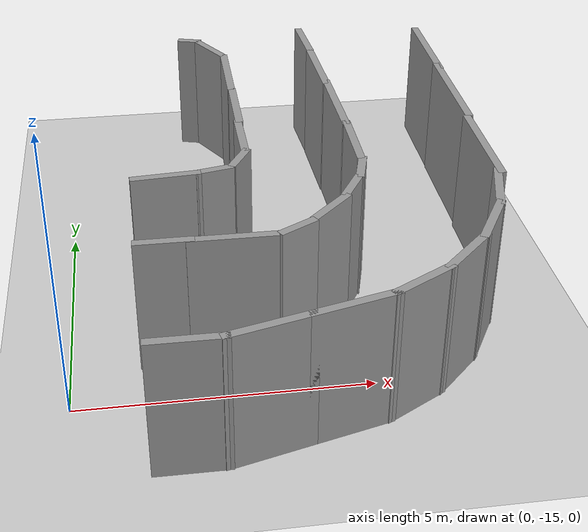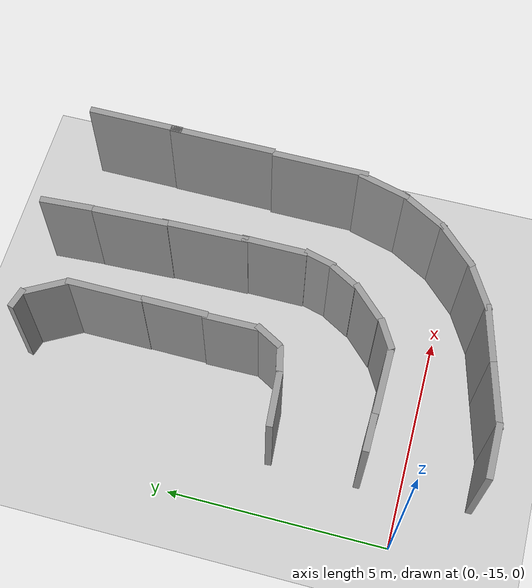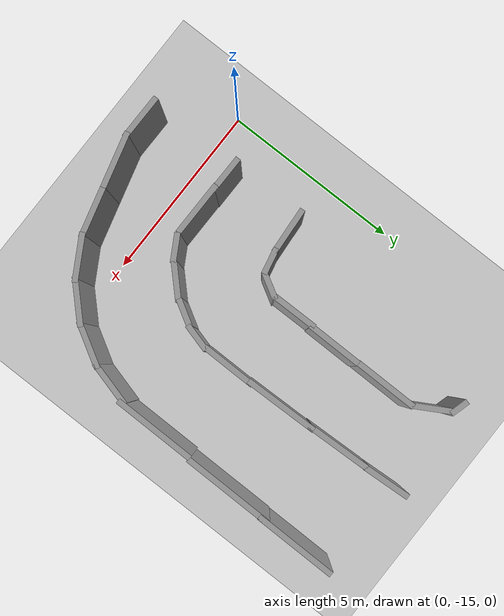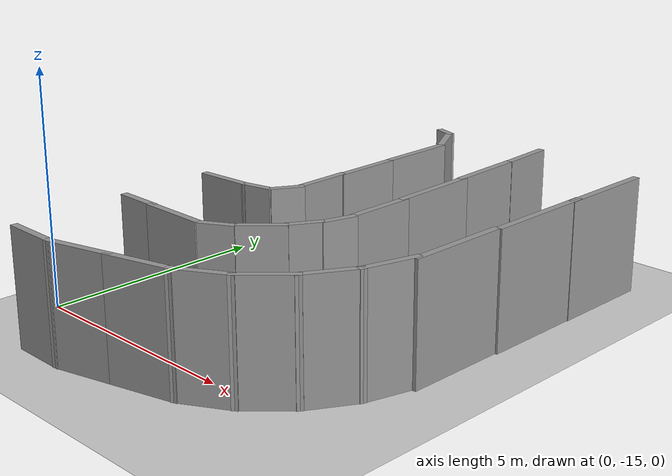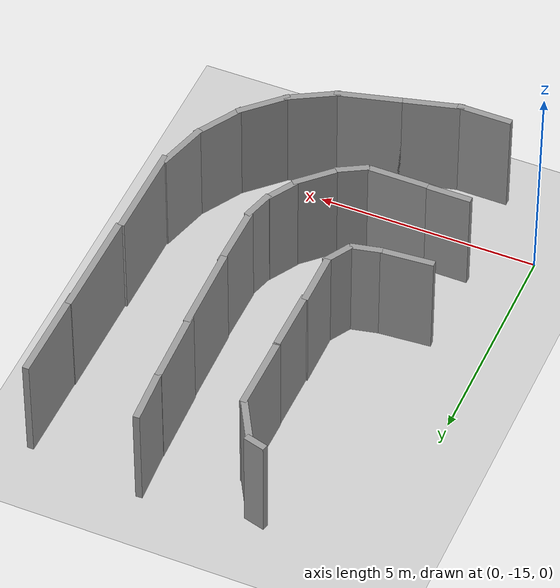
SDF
<sdf version="1.6">
 <world name="default">
  <model name="ground_plane">
   <static>1</static>
   <link name="link">
    <collision name="collision">
     <geometry><plane><normal>0 0 1</normal><size>100 100</size></plane></geometry>
     <surface><friction><ode><mu>100</mu><mu2>50</mu2></ode></friction></surface>
    </collision>
    <visual name="visual">
     <cast_shadows>0</cast_shadows>
     <geometry><plane><normal>0 0 1</normal><size>100 100</size></plane></geometry>
     <material>
      <script><uri>file://media/materials/scripts/gazebo.material</uri><name>Gazebo/Grey</name></script>
     </material>
    </visual>
   </link>
  </model>
  <model name="c-Snail_v3_clone">
   <link name="Wall_19">
    <pose>0.800174 -5.81597 0 0 -0 0</pose>
    <visual name="Wall_19_Visual">
     <pose>0 0 1.25 0 -0 0</pose>
     <geometry><box><size>2.25 0.15 2.5</size></box></geometry>
     <material>
      <script><uri>file://media/materials/scripts/gazebo.material</uri><name>Gazebo/Grey</name></script>
      <ambient>1 1 1 1</ambient>
     </material>
     <meta><layer>0</layer></meta>
    </visual>
    <collision name="Wall_19_Collision">
     <pose>0 0 1.25 0 -0 0</pose>
     <geometry><box><size>2.25 0.15 2.5</size></box></geometry>
     <surface>
      <friction>
       <ode><mu>1</mu><mu2>1</mu2><fdir1>0 0 0</fdir1><slip1>0</slip1><slip2>0</slip2></ode>
       <torsional>
        <coefficient>1</coefficient>
        <patch_radius>0</patch_radius>
        <surface_radius>0</surface_radius>
        <use_patch_radius>1</use_patch_radius>
        <ode><slip>0</slip></ode>
       </torsional>
      </friction>
      <bounce><restitution_coefficient>0</restitution_coefficient><threshold>1e+06</threshold></bounce>
      <contact>
       <collide_without_contact>0</collide_without_contact>
       <collide_without_contact_bitmask>1</collide_without_contact_bitmask>
       <collide_bitmask>1</collide_bitmask>
       <ode>
        <soft_cfm>0</soft_cfm>
        <soft_erp>0.2</soft_erp>
        <kp>1e+13</kp>
        <kd>1</kd>
        <max_vel>0.01</max_vel>
        <min_depth>0</min_depth>
       </ode>
       <bullet>
        <split_impulse>1</split_impulse>
        <split_impulse_penetration_threshold>-0.01</split_impulse_penetration_threshold>
        <soft_cfm>0</soft_cfm>
        <soft_erp>0.2</soft_erp>
        <kp>1e+13</kp>
        <kd>1</kd>
       </bullet>
      </contact>
     </surface>
    </collision>
   </link>
   <link name="Wall_20">
    <pose>2.90214 -5.80096 0 0 -0 0</pose>
    <visual name="Wall_20_Visual">
     <pose>0 0 1.25 0 -0 0</pose>
     <geometry><box><size>2.5 0.15 2.5</size></box></geometry>
     <material>
      <script><uri>file://media/materials/scripts/gazebo.material</uri><name>Gazebo/Grey</name></script>
      <ambient>1 1 1 1</ambient>
     </material>
     <meta><layer>0</layer></meta>
    </visual>
    <collision name="Wall_20_Collision">
     <pose>0 0 1.25 0 -0 0</pose>
     <geometry><box><size>2.5 0.15 2.5</size></box></geometry>
     <surface>
      <friction>
       <ode><mu>1</mu><mu2>1</mu2><fdir1>0 0 0</fdir1><slip1>0</slip1><slip2>0</slip2></ode>
       <torsional>
        <coefficient>1</coefficient>
        <patch_radius>0</patch_radius>
        <surface_radius>0</surface_radius>
        <use_patch_radius>1</use_patch_radius>
        <ode><slip>0</slip></ode>
       </torsional>
      </friction>
      <bounce><restitution_coefficient>0</restitution_coefficient><threshold>1e+06</threshold></bounce>
      <contact>
       <collide_without_contact>0</collide_without_contact>
       <collide_without_contact_bitmask>1</collide_without_contact_bitmask>
       <collide_bitmask>1</collide_bitmask>
       <ode>
        <soft_cfm>0</soft_cfm>
        <soft_erp>0.2</soft_erp>
        <kp>1e+13</kp>
        <kd>1</kd>
        <max_vel>0.01</max_vel>
        <min_depth>0</min_depth>
       </ode>
       <bullet>
        <split_impulse>1</split_impulse>
        <split_impulse_penetration_threshold>-0.01</split_impulse_penetration_threshold>
        <soft_cfm>0</soft_cfm>
        <soft_erp>0.2</soft_erp>
        <kp>1e+13</kp>
        <kd>1</kd>
       </bullet>
      </contact>
     </surface>
    </collision>
   </link>
   <link name="Wall_21">
    <pose>5.25228 -5.75509 0 0 -0 0</pose>
    <visual name="Wall_21_Visual">
     <pose>0 0 1.25 0 -0 0</pose>
     <geometry><box><size>2.25 0.15 2.5</size></box></geometry>
     <material>
      <script><uri>file://media/materials/scripts/gazebo.material</uri><name>Gazebo/Grey</name></script>
      <ambient>1 1 1 1</ambient>
     </material>
     <meta><layer>0</layer></meta>
    </visual>
    <collision name="Wall_21_Collision">
     <pose>0 0 1.25 0 -0 0</pose>
     <geometry><box><size>2.25 0.15 2.5</size></box></geometry>
     <surface>
      <friction>
       <ode><mu>1</mu><mu2>1</mu2><fdir1>0 0 0</fdir1><slip1>0</slip1><slip2>0</slip2></ode>
       <torsional>
        <coefficient>1</coefficient>
        <patch_radius>0</patch_radius>
        <surface_radius>0</surface_radius>
        <use_patch_radius>1</use_patch_radius>
        <ode><slip>0</slip></ode>
       </torsional>
      </friction>
      <bounce><restitution_coefficient>0</restitution_coefficient><threshold>1e+06</threshold></bounce>
      <contact>
       <collide_without_contact>0</collide_without_contact>
       <collide_without_contact_bitmask>1</collide_without_contact_bitmask>
       <collide_bitmask>1</collide_bitmask>
       <ode>
        <soft_cfm>0</soft_cfm>
        <soft_erp>0.2</soft_erp>
        <kp>1e+13</kp>
        <kd>1</kd>
        <max_vel>0.01</max_vel>
        <min_depth>0</min_depth>
       </ode>
       <bullet>
        <split_impulse>1</split_impulse>
        <split_impulse_penetration_threshold>-0.01</split_impulse_penetration_threshold>
        <soft_cfm>0</soft_cfm>
        <soft_erp>0.2</soft_erp>
        <kp>1e+13</kp>
        <kd>1</kd>
       </bullet>
      </contact>
     </surface>
    </collision>
   </link>
   <link name="Wall_22">
    <pose>6.78859 -5.56286 0 0 -0 0.261799</pose>
    <visual name="Wall_22_Visual">
     <pose>0 0 1.25 0 -0 0</pose>
     <geometry><box><size>1.25 0.15 2.5</size></box></geometry>
     <material>
      <script><uri>file://media/materials/scripts/gazebo.material</uri><name>Gazebo/Grey</name></script>
      <ambient>1 1 1 1</ambient>
     </material>
     <meta><layer>0</layer></meta>
    </visual>
    <collision name="Wall_22_Collision">
     <pose>0 0 1.25 0 -0 0</pose>
     <geometry><box><size>1.25 0.15 2.5</size></box></geometry>
     <surface>
      <friction>
       <ode><mu>1</mu><mu2>1</mu2><fdir1>0 0 0</fdir1><slip1>0</slip1><slip2>0</slip2></ode>
       <torsional>
        <coefficient>1</coefficient>
        <patch_radius>0</patch_radius>
        <surface_radius>0</surface_radius>
        <use_patch_radius>1</use_patch_radius>
        <ode><slip>0</slip></ode>
       </torsional>
      </friction>
      <bounce><restitution_coefficient>0</restitution_coefficient><threshold>1e+06</threshold></bounce>
      <contact>
       <collide_without_contact>0</collide_without_contact>
       <collide_without_contact_bitmask>1</collide_without_contact_bitmask>
       <collide_bitmask>1</collide_bitmask>
       <ode>
        <soft_cfm>0</soft_cfm>
        <soft_erp>0.2</soft_erp>
        <kp>1e+13</kp>
        <kd>1</kd>
        <max_vel>0.01</max_vel>
        <min_depth>0</min_depth>
       </ode>
       <bullet>
        <split_impulse>1</split_impulse>
        <split_impulse_penetration_threshold>-0.01</split_impulse_penetration_threshold>
        <soft_cfm>0</soft_cfm>
        <soft_erp>0.2</soft_erp>
        <kp>1e+13</kp>
        <kd>1</kd>
       </bullet>
      </contact>
     </surface>
    </collision>
   </link>
   <link name="Wall_23">
    <pose>7.79617 -5.14551 0 0 -0 0.523599</pose>
    <visual name="Wall_23_Visual">
     <pose>0 0 1.25 0 -0 0</pose>
     <geometry><box><size>1.25 0.15 2.5</size></box></geometry>
     <material>
      <script><uri>file://media/materials/scripts/gazebo.material</uri><name>Gazebo/Grey</name></script>
      <ambient>1 1 1 1</ambient>
     </material>
     <meta><layer>0</layer></meta>
    </visual>
    <collision name="Wall_23_Collision">
     <pose>0 0 1.25 0 -0 0</pose>
     <geometry><box><size>1.25 0.15 2.5</size></box></geometry>
     <surface>
      <friction>
       <ode><mu>1</mu><mu2>1</mu2><fdir1>0 0 0</fdir1><slip1>0</slip1><slip2>0</slip2></ode>
       <torsional>
        <coefficient>1</coefficient>
        <patch_radius>0</patch_radius>
        <surface_radius>0</surface_radius>
        <use_patch_radius>1</use_patch_radius>
        <ode><slip>0</slip></ode>
       </torsional>
      </friction>
      <bounce><restitution_coefficient>0</restitution_coefficient><threshold>1e+06</threshold></bounce>
      <contact>
       <collide_without_contact>0</collide_without_contact>
       <collide_without_contact_bitmask>1</collide_without_contact_bitmask>
       <collide_bitmask>1</collide_bitmask>
       <ode>
        <soft_cfm>0</soft_cfm>
        <soft_erp>0.2</soft_erp>
        <kp>1e+13</kp>
        <kd>1</kd>
        <max_vel>0.01</max_vel>
        <min_depth>0</min_depth>
       </ode>
       <bullet>
        <split_impulse>1</split_impulse>
        <split_impulse_penetration_threshold>-0.01</split_impulse_penetration_threshold>
        <soft_cfm>0</soft_cfm>
        <soft_erp>0.2</soft_erp>
        <kp>1e+13</kp>
        <kd>1</kd>
       </bullet>
      </contact>
     </surface>
    </collision>
   </link>
   <link name="Wall_24">
    <pose>8.66139 -4.4816 0 0 -0 0.785398</pose>
    <visual name="Wall_24_Visual">
     <pose>0 0 1.25 0 -0 0</pose>
     <geometry><box><size>1.25 0.15 2.5</size></box></geometry>
     <material>
      <script><uri>file://media/materials/scripts/gazebo.material</uri><name>Gazebo/Grey</name></script>
      <ambient>1 1 1 1</ambient>
     </material>
     <meta><layer>0</layer></meta>
    </visual>
    <collision name="Wall_24_Collision">
     <pose>0 0 1.25 0 -0 0</pose>
     <geometry><box><size>1.25 0.15 2.5</size></box></geometry>
     <surface>
      <friction>
       <ode><mu>1</mu><mu2>1</mu2><fdir1>0 0 0</fdir1><slip1>0</slip1><slip2>0</slip2></ode>
       <torsional>
        <coefficient>1</coefficient>
        <patch_radius>0</patch_radius>
        <surface_radius>0</surface_radius>
        <use_patch_radius>1</use_patch_radius>
        <ode><slip>0</slip></ode>
       </torsional>
      </friction>
      <bounce><restitution_coefficient>0</restitution_coefficient><threshold>1e+06</threshold></bounce>
      <contact>
       <collide_without_contact>0</collide_without_contact>
       <collide_without_contact_bitmask>1</collide_without_contact_bitmask>
       <collide_bitmask>1</collide_bitmask>
       <ode>
        <soft_cfm>0</soft_cfm>
        <soft_erp>0.2</soft_erp>
        <kp>1e+13</kp>
        <kd>1</kd>
        <max_vel>0.01</max_vel>
        <min_depth>0</min_depth>
       </ode>
       <bullet>
        <split_impulse>1</split_impulse>
        <split_impulse_penetration_threshold>-0.01</split_impulse_penetration_threshold>
        <soft_cfm>0</soft_cfm>
        <soft_erp>0.2</soft_erp>
        <kp>1e+13</kp>
        <kd>1</kd>
       </bullet>
      </contact>
     </surface>
    </collision>
   </link>
   <link name="Wall_25">
    <pose>9.3253 -3.61638 0 0 -0 1.0472</pose>
    <visual name="Wall_25_Visual">
     <pose>0 0 1.25 0 -0 0</pose>
     <geometry><box><size>1.25 0.15 2.5</size></box></geometry>
     <material>
      <script><uri>file://media/materials/scripts/gazebo.material</uri><name>Gazebo/Grey</name></script>
      <ambient>1 1 1 1</ambient>
     </material>
     <meta><layer>0</layer></meta>
    </visual>
    <collision name="Wall_25_Collision">
     <pose>0 0 1.25 0 -0 0</pose>
     <geometry><box><size>1.25 0.15 2.5</size></box></geometry>
     <surface>
      <friction>
       <ode><mu>1</mu><mu2>1</mu2><fdir1>0 0 0</fdir1><slip1>0</slip1><slip2>0</slip2></ode>
       <torsional>
        <coefficient>1</coefficient>
        <patch_radius>0</patch_radius>
        <surface_radius>0</surface_radius>
        <use_patch_radius>1</use_patch_radius>
        <ode><slip>0</slip></ode>
       </torsional>
      </friction>
      <bounce><restitution_coefficient>0</restitution_coefficient><threshold>1e+06</threshold></bounce>
      <contact>
       <collide_without_contact>0</collide_without_contact>
       <collide_without_contact_bitmask>1</collide_without_contact_bitmask>
       <collide_bitmask>1</collide_bitmask>
       <ode>
        <soft_cfm>0</soft_cfm>
        <soft_erp>0.2</soft_erp>
        <kp>1e+13</kp>
        <kd>1</kd>
        <max_vel>0.01</max_vel>
        <min_depth>0</min_depth>
       </ode>
       <bullet>
        <split_impulse>1</split_impulse>
        <split_impulse_penetration_threshold>-0.01</split_impulse_penetration_threshold>
        <soft_cfm>0</soft_cfm>
        <soft_erp>0.2</soft_erp>
        <kp>1e+13</kp>
        <kd>1</kd>
       </bullet>
      </contact>
     </surface>
    </collision>
   </link>
   <link name="Wall_26">
    <pose>9.775 -2.48806 0 0 -0 1.309</pose>
    <visual name="Wall_26_Visual">
     <pose>0 0 1.25 0 -0 0</pose>
     <geometry><box><size>1.5 0.15 2.5</size></box></geometry>
     <material>
      <script><uri>file://media/materials/scripts/gazebo.material</uri><name>Gazebo/Grey</name></script>
      <ambient>1 1 1 1</ambient>
     </material>
     <meta><layer>0</layer></meta>
    </visual>
    <collision name="Wall_26_Collision">
     <pose>0 0 1.25 0 -0 0</pose>
     <geometry><box><size>1.5 0.15 2.5</size></box></geometry>
     <surface>
      <friction>
       <ode><mu>1</mu><mu2>1</mu2><fdir1>0 0 0</fdir1><slip1>0</slip1><slip2>0</slip2></ode>
       <torsional>
        <coefficient>1</coefficient>
        <patch_radius>0</patch_radius>
        <surface_radius>0</surface_radius>
        <use_patch_radius>1</use_patch_radius>
        <ode><slip>0</slip></ode>
       </torsional>
      </friction>
      <bounce><restitution_coefficient>0</restitution_coefficient><threshold>1e+06</threshold></bounce>
      <contact>
       <collide_without_contact>0</collide_without_contact>
       <collide_without_contact_bitmask>1</collide_without_contact_bitmask>
       <collide_bitmask>1</collide_bitmask>
       <ode>
        <soft_cfm>0</soft_cfm>
        <soft_erp>0.2</soft_erp>
        <kp>1e+13</kp>
        <kd>1</kd>
        <max_vel>0.01</max_vel>
        <min_depth>0</min_depth>
       </ode>
       <bullet>
        <split_impulse>1</split_impulse>
        <split_impulse_penetration_threshold>-0.01</split_impulse_penetration_threshold>
        <soft_cfm>0</soft_cfm>
        <soft_erp>0.2</soft_erp>
        <kp>1e+13</kp>
        <kd>1</kd>
       </bullet>
      </contact>
     </surface>
    </collision>
   </link>
   <link name="Wall_27">
    <pose>10.1244 -1.18406 0 0 -0 1.309</pose>
    <visual name="Wall_27_Visual">
     <pose>0 0 1.25 0 -0 0</pose>
     <geometry><box><size>1.5 0.15 2.5</size></box></geometry>
     <material>
      <script><uri>file://media/materials/scripts/gazebo.material</uri><name>Gazebo/Grey</name></script>
      <ambient>1 1 1 1</ambient>
     </material>
     <meta><layer>0</layer></meta>
    </visual>
    <collision name="Wall_27_Collision">
     <pose>0 0 1.25 0 -0 0</pose>
     <geometry><box><size>1.5 0.15 2.5</size></box></geometry>
     <surface>
      <friction>
       <ode><mu>1</mu><mu2>1</mu2><fdir1>0 0 0</fdir1><slip1>0</slip1><slip2>0</slip2></ode>
       <torsional>
        <coefficient>1</coefficient>
        <patch_radius>0</patch_radius>
        <surface_radius>0</surface_radius>
        <use_patch_radius>1</use_patch_radius>
        <ode><slip>0</slip></ode>
       </torsional>
      </friction>
      <bounce><restitution_coefficient>0</restitution_coefficient><threshold>1e+06</threshold></bounce>
      <contact>
       <collide_without_contact>0</collide_without_contact>
       <collide_without_contact_bitmask>1</collide_without_contact_bitmask>
       <collide_bitmask>1</collide_bitmask>
       <ode>
        <soft_cfm>0</soft_cfm>
        <soft_erp>0.2</soft_erp>
        <kp>1e+13</kp>
        <kd>1</kd>
        <max_vel>0.01</max_vel>
        <min_depth>0</min_depth>
       </ode>
       <bullet>
        <split_impulse>1</split_impulse>
        <split_impulse_penetration_threshold>-0.01</split_impulse_penetration_threshold>
        <soft_cfm>0</soft_cfm>
        <soft_erp>0.2</soft_erp>
        <kp>1e+13</kp>
        <kd>1</kd>
       </bullet>
      </contact>
     </surface>
    </collision>
   </link>
   <link name="Wall_28">
    <pose>10.2991 0.017937 0 0 -0 1.5708</pose>
    <visual name="Wall_28_Visual">
     <pose>0 0 1.25 0 -0 0</pose>
     <geometry><box><size>1.25 0.15 2.5</size></box></geometry>
     <material>
      <script><uri>file://media/materials/scripts/gazebo.material</uri><name>Gazebo/Grey</name></script>
      <ambient>1 1 1 1</ambient>
     </material>
     <meta><layer>0</layer></meta>
    </visual>
    <collision name="Wall_28_Collision">
     <pose>0 0 1.25 0 -0 0</pose>
     <geometry><box><size>1.25 0.15 2.5</size></box></geometry>
     <surface>
      <friction>
       <ode><mu>1</mu><mu2>1</mu2><fdir1>0 0 0</fdir1><slip1>0</slip1><slip2>0</slip2></ode>
       <torsional>
        <coefficient>1</coefficient>
        <patch_radius>0</patch_radius>
        <surface_radius>0</surface_radius>
        <use_patch_radius>1</use_patch_radius>
        <ode><slip>0</slip></ode>
       </torsional>
      </friction>
      <bounce><restitution_coefficient>0</restitution_coefficient><threshold>1e+06</threshold></bounce>
      <contact>
       <collide_without_contact>0</collide_without_contact>
       <collide_without_contact_bitmask>1</collide_without_contact_bitmask>
       <collide_bitmask>1</collide_bitmask>
       <ode>
        <soft_cfm>0</soft_cfm>
        <soft_erp>0.2</soft_erp>
        <kp>1e+13</kp>
        <kd>1</kd>
        <max_vel>0.01</max_vel>
        <min_depth>0</min_depth>
       </ode>
       <bullet>
        <split_impulse>1</split_impulse>
        <split_impulse_penetration_threshold>-0.01</split_impulse_penetration_threshold>
        <soft_cfm>0</soft_cfm>
        <soft_erp>0.2</soft_erp>
        <kp>1e+13</kp>
        <kd>1</kd>
       </bullet>
      </contact>
     </surface>
    </collision>
   </link>
   <link name="Wall_46">
    <pose>0.001242 -3.22352 -0 0 0 -0.065231</pose>
    <visual name="Wall_46_Visual">
     <pose>0 0 1.25 0 -0 0</pose>
     <geometry><box><size>1.25 0.15 2.5</size></box></geometry>
     <material>
      <script><uri>file://media/materials/scripts/gazebo.material</uri><name>Gazebo/Grey</name></script>
      <ambient>1 1 1 1</ambient>
     </material>
     <meta><layer>0</layer></meta>
    </visual>
    <collision name="Wall_46_Collision">
     <pose>0 0 1.25 0 -0 0</pose>
     <geometry><box><size>1.25 0.15 2.5</size></box></geometry>
     <surface>
      <friction>
       <ode><mu>1</mu><mu2>1</mu2><fdir1>0 0 0</fdir1><slip1>0</slip1><slip2>0</slip2></ode>
       <torsional>
        <coefficient>1</coefficient>
        <patch_radius>0</patch_radius>
        <surface_radius>0</surface_radius>
        <use_patch_radius>1</use_patch_radius>
        <ode><slip>0</slip></ode>
       </torsional>
      </friction>
      <bounce><restitution_coefficient>0</restitution_coefficient><threshold>1e+06</threshold></bounce>
      <contact>
       <collide_without_contact>0</collide_without_contact>
       <collide_without_contact_bitmask>1</collide_without_contact_bitmask>
       <collide_bitmask>1</collide_bitmask>
       <ode>
        <soft_cfm>0</soft_cfm>
        <soft_erp>0.2</soft_erp>
        <kp>1e+13</kp>
        <kd>1</kd>
        <max_vel>0.01</max_vel>
        <min_depth>0</min_depth>
       </ode>
       <bullet>
        <split_impulse>1</split_impulse>
        <split_impulse_penetration_threshold>-0.01</split_impulse_penetration_threshold>
        <soft_cfm>0</soft_cfm>
        <soft_erp>0.2</soft_erp>
        <kp>1e+13</kp>
        <kd>1</kd>
       </bullet>
      </contact>
     </surface>
    </collision>
   </link>
   <link name="Wall_47">
    <pose>1.4692 -3.29142 0 0 0 -0.040966</pose>
    <visual name="Wall_47_Visual">
     <pose>0 0 1.25 0 -0 0</pose>
     <geometry><box><size>1.75 0.15 2.5</size></box></geometry>
     <material>
      <script><uri>file://media/materials/scripts/gazebo.material</uri><name>Gazebo/Grey</name></script>
      <ambient>1 1 1 1</ambient>
     </material>
     <meta><layer>0</layer></meta>
    </visual>
    <collision name="Wall_47_Collision">
     <pose>0 0 1.25 0 -0 0</pose>
     <geometry><box><size>1.75 0.15 2.5</size></box></geometry>
     <surface>
      <friction>
       <ode><mu>1</mu><mu2>1</mu2><fdir1>0 0 0</fdir1><slip1>0</slip1><slip2>0</slip2></ode>
       <torsional>
        <coefficient>1</coefficient>
        <patch_radius>0</patch_radius>
        <surface_radius>0</surface_radius>
        <use_patch_radius>1</use_patch_radius>
        <ode><slip>0</slip></ode>
       </torsional>
      </friction>
      <bounce><restitution_coefficient>0</restitution_coefficient><threshold>1e+06</threshold></bounce>
      <contact>
       <collide_without_contact>0</collide_without_contact>
       <collide_without_contact_bitmask>1</collide_without_contact_bitmask>
       <collide_bitmask>1</collide_bitmask>
       <ode>
        <soft_cfm>0</soft_cfm>
        <soft_erp>0.2</soft_erp>
        <kp>1e+13</kp>
        <kd>1</kd>
        <max_vel>0.01</max_vel>
        <min_depth>0</min_depth>
       </ode>
       <bullet>
        <split_impulse>1</split_impulse>
        <split_impulse_penetration_threshold>-0.01</split_impulse_penetration_threshold>
        <soft_cfm>0</soft_cfm>
        <soft_erp>0.2</soft_erp>
        <kp>1e+13</kp>
        <kd>1</kd>
       </bullet>
      </contact>
     </surface>
    </collision>
   </link>
   <link name="Wall_48">
    <pose>3.18497 -3.36606 0 0 0 -0.02609</pose>
    <visual name="Wall_48_Visual">
     <pose>0 0 1.25 0 -0 0</pose>
     <geometry><box><size>2 0.15 2.5</size></box></geometry>
     <material>
      <script><uri>file://media/materials/scripts/gazebo.material</uri><name>Gazebo/Grey</name></script>
      <ambient>1 1 1 1</ambient>
     </material>
     <meta><layer>0</layer></meta>
    </visual>
    <collision name="Wall_48_Collision">
     <pose>0 0 1.25 0 -0 0</pose>
     <geometry><box><size>2 0.15 2.5</size></box></geometry>
     <surface>
      <friction>
       <ode><mu>1</mu><mu2>1</mu2><fdir1>0 0 0</fdir1><slip1>0</slip1><slip2>0</slip2></ode>
       <torsional>
        <coefficient>1</coefficient>
        <patch_radius>0</patch_radius>
        <surface_radius>0</surface_radius>
        <use_patch_radius>1</use_patch_radius>
        <ode><slip>0</slip></ode>
       </torsional>
      </friction>
      <bounce><restitution_coefficient>0</restitution_coefficient><threshold>1e+06</threshold></bounce>
      <contact>
       <collide_without_contact>0</collide_without_contact>
       <collide_without_contact_bitmask>1</collide_without_contact_bitmask>
       <collide_bitmask>1</collide_bitmask>
       <ode>
        <soft_cfm>0</soft_cfm>
        <soft_erp>0.2</soft_erp>
        <kp>1e+13</kp>
        <kd>1</kd>
        <max_vel>0.01</max_vel>
        <min_depth>0</min_depth>
       </ode>
       <bullet>
        <split_impulse>1</split_impulse>
        <split_impulse_penetration_threshold>-0.01</split_impulse_penetration_threshold>
        <soft_cfm>0</soft_cfm>
        <soft_erp>0.2</soft_erp>
        <kp>1e+13</kp>
        <kd>1</kd>
       </bullet>
      </contact>
     </surface>
    </collision>
   </link>
   <link name="Wall_49">
    <pose>4.78497 -3.4097 0 0 -0 0</pose>
    <visual name="Wall_49_Visual">
     <pose>0 0 1.25 0 -0 0</pose>
     <geometry><box><size>1.5 0.15 2.5</size></box></geometry>
     <material>
      <script><uri>file://media/materials/scripts/gazebo.material</uri><name>Gazebo/Grey</name></script>
      <ambient>1 1 1 1</ambient>
     </material>
     <meta><layer>0</layer></meta>
    </visual>
    <collision name="Wall_49_Collision">
     <pose>0 0 1.25 0 -0 0</pose>
     <geometry><box><size>1.5 0.15 2.5</size></box></geometry>
     <surface>
      <friction>
       <ode><mu>1</mu><mu2>1</mu2><fdir1>0 0 0</fdir1><slip1>0</slip1><slip2>0</slip2></ode>
       <torsional>
        <coefficient>1</coefficient>
        <patch_radius>0</patch_radius>
        <surface_radius>0</surface_radius>
        <use_patch_radius>1</use_patch_radius>
        <ode><slip>0</slip></ode>
       </torsional>
      </friction>
      <bounce><restitution_coefficient>0</restitution_coefficient><threshold>1e+06</threshold></bounce>
      <contact>
       <collide_without_contact>0</collide_without_contact>
       <collide_without_contact_bitmask>1</collide_without_contact_bitmask>
       <collide_bitmask>1</collide_bitmask>
       <ode>
        <soft_cfm>0</soft_cfm>
        <soft_erp>0.2</soft_erp>
        <kp>1e+13</kp>
        <kd>1</kd>
        <max_vel>0.01</max_vel>
        <min_depth>0</min_depth>
       </ode>
       <bullet>
        <split_impulse>1</split_impulse>
        <split_impulse_penetration_threshold>-0.01</split_impulse_penetration_threshold>
        <soft_cfm>0</soft_cfm>
        <soft_erp>0.2</soft_erp>
        <kp>1e+13</kp>
        <kd>1</kd>
       </bullet>
      </contact>
     </surface>
    </collision>
   </link>
   <link name="Wall_50">
    <pose>5.83118 -3.35199 0 0 -0 0.261799</pose>
    <visual name="Wall_50_Visual">
     <pose>0 0 1.25 0 -0 0</pose>
     <geometry><box><size>0.75 0.15 2.5</size></box></geometry>
     <material>
      <script><uri>file://media/materials/scripts/gazebo.material</uri><name>Gazebo/Grey</name></script>
      <ambient>1 1 1 1</ambient>
     </material>
     <meta><layer>0</layer></meta>
    </visual>
    <collision name="Wall_50_Collision">
     <pose>0 0 1.25 0 -0 0</pose>
     <geometry><box><size>0.75 0.15 2.5</size></box></geometry>
     <surface>
      <friction>
       <ode><mu>1</mu><mu2>1</mu2><fdir1>0 0 0</fdir1><slip1>0</slip1><slip2>0</slip2></ode>
       <torsional>
        <coefficient>1</coefficient>
        <patch_radius>0</patch_radius>
        <surface_radius>0</surface_radius>
        <use_patch_radius>1</use_patch_radius>
        <ode><slip>0</slip></ode>
       </torsional>
      </friction>
      <bounce><restitution_coefficient>0</restitution_coefficient><threshold>1e+06</threshold></bounce>
      <contact>
       <collide_without_contact>0</collide_without_contact>
       <collide_without_contact_bitmask>1</collide_without_contact_bitmask>
       <collide_bitmask>1</collide_bitmask>
       <ode>
        <soft_cfm>0</soft_cfm>
        <soft_erp>0.2</soft_erp>
        <kp>1e+13</kp>
        <kd>1</kd>
        <max_vel>0.01</max_vel>
        <min_depth>0</min_depth>
       </ode>
       <bullet>
        <split_impulse>1</split_impulse>
        <split_impulse_penetration_threshold>-0.01</split_impulse_penetration_threshold>
        <soft_cfm>0</soft_cfm>
        <soft_erp>0.2</soft_erp>
        <kp>1e+13</kp>
        <kd>1</kd>
       </bullet>
      </contact>
     </surface>
    </collision>
   </link>
   <link name="Wall_51">
    <pose>6.44534 -3.07335 0 0 -0 0.523599</pose>
    <visual name="Wall_51_Visual">
     <pose>0 0 1.25 0 -0 0</pose>
     <geometry><box><size>0.75 0.15 2.5</size></box></geometry>
     <material>
      <script><uri>file://media/materials/scripts/gazebo.material</uri><name>Gazebo/Grey</name></script>
      <ambient>1 1 1 1</ambient>
     </material>
     <meta><layer>0</layer></meta>
    </visual>
    <collision name="Wall_51_Collision">
     <pose>0 0 1.25 0 -0 0</pose>
     <geometry><box><size>0.75 0.15 2.5</size></box></geometry>
     <surface>
      <friction>
       <ode><mu>1</mu><mu2>1</mu2><fdir1>0 0 0</fdir1><slip1>0</slip1><slip2>0</slip2></ode>
       <torsional>
        <coefficient>1</coefficient>
        <patch_radius>0</patch_radius>
        <surface_radius>0</surface_radius>
        <use_patch_radius>1</use_patch_radius>
        <ode><slip>0</slip></ode>
       </torsional>
      </friction>
      <bounce><restitution_coefficient>0</restitution_coefficient><threshold>1e+06</threshold></bounce>
      <contact>
       <collide_without_contact>0</collide_without_contact>
       <collide_without_contact_bitmask>1</collide_without_contact_bitmask>
       <collide_bitmask>1</collide_bitmask>
       <ode>
        <soft_cfm>0</soft_cfm>
        <soft_erp>0.2</soft_erp>
        <kp>1e+13</kp>
        <kd>1</kd>
        <max_vel>0.01</max_vel>
        <min_depth>0</min_depth>
       </ode>
       <bullet>
        <split_impulse>1</split_impulse>
        <split_impulse_penetration_threshold>-0.01</split_impulse_penetration_threshold>
        <soft_cfm>0</soft_cfm>
        <soft_erp>0.2</soft_erp>
        <kp>1e+13</kp>
        <kd>1</kd>
       </bullet>
      </contact>
     </surface>
    </collision>
   </link>
   <link name="Wall_52">
    <pose>7.08455 -2.59483 0 0 -0 0.785398</pose>
    <visual name="Wall_52_Visual">
     <pose>0 0 1.25 0 -0 0</pose>
     <geometry><box><size>1 0.15 2.5</size></box></geometry>
     <material>
      <script><uri>file://media/materials/scripts/gazebo.material</uri><name>Gazebo/Grey</name></script>
      <ambient>1 1 1 1</ambient>
     </material>
     <meta><layer>0</layer></meta>
    </visual>
    <collision name="Wall_52_Collision">
     <pose>0 0 1.25 0 -0 0</pose>
     <geometry><box><size>1 0.15 2.5</size></box></geometry>
     <surface>
      <friction>
       <ode><mu>1</mu><mu2>1</mu2><fdir1>0 0 0</fdir1><slip1>0</slip1><slip2>0</slip2></ode>
       <torsional>
        <coefficient>1</coefficient>
        <patch_radius>0</patch_radius>
        <surface_radius>0</surface_radius>
        <use_patch_radius>1</use_patch_radius>
        <ode><slip>0</slip></ode>
       </torsional>
      </friction>
      <bounce><restitution_coefficient>0</restitution_coefficient><threshold>1e+06</threshold></bounce>
      <contact>
       <collide_without_contact>0</collide_without_contact>
       <collide_without_contact_bitmask>1</collide_without_contact_bitmask>
       <collide_bitmask>1</collide_bitmask>
       <ode>
        <soft_cfm>0</soft_cfm>
        <soft_erp>0.2</soft_erp>
        <kp>1e+13</kp>
        <kd>1</kd>
        <max_vel>0.01</max_vel>
        <min_depth>0</min_depth>
       </ode>
       <bullet>
        <split_impulse>1</split_impulse>
        <split_impulse_penetration_threshold>-0.01</split_impulse_penetration_threshold>
        <soft_cfm>0</soft_cfm>
        <soft_erp>0.2</soft_erp>
        <kp>1e+13</kp>
        <kd>1</kd>
       </bullet>
      </contact>
     </surface>
    </collision>
   </link>
   <link name="Wall_53">
    <pose>7.62419 -1.95298 0 0 -0 1.0472</pose>
    <visual name="Wall_53_Visual">
     <pose>0 0 1.25 0 -0 0</pose>
     <geometry><box><size>0.75 0.15 2.5</size></box></geometry>
     <material>
      <script><uri>file://media/materials/scripts/gazebo.material</uri><name>Gazebo/Grey</name></script>
      <ambient>1 1 1 1</ambient>
     </material>
     <meta><layer>0</layer></meta>
    </visual>
    <collision name="Wall_53_Collision">
     <pose>0 0 1.25 0 -0 0</pose>
     <geometry><box><size>0.75 0.15 2.5</size></box></geometry>
     <surface>
      <friction>
       <ode><mu>1</mu><mu2>1</mu2><fdir1>0 0 0</fdir1><slip1>0</slip1><slip2>0</slip2></ode>
       <torsional>
        <coefficient>1</coefficient>
        <patch_radius>0</patch_radius>
        <surface_radius>0</surface_radius>
        <use_patch_radius>1</use_patch_radius>
        <ode><slip>0</slip></ode>
       </torsional>
      </friction>
      <bounce><restitution_coefficient>0</restitution_coefficient><threshold>1e+06</threshold></bounce>
      <contact>
       <collide_without_contact>0</collide_without_contact>
       <collide_without_contact_bitmask>1</collide_without_contact_bitmask>
       <collide_bitmask>1</collide_bitmask>
       <ode>
        <soft_cfm>0</soft_cfm>
        <soft_erp>0.2</soft_erp>
        <kp>1e+13</kp>
        <kd>1</kd>
        <max_vel>0.01</max_vel>
        <min_depth>0</min_depth>
       </ode>
       <bullet>
        <split_impulse>1</split_impulse>
        <split_impulse_penetration_threshold>-0.01</split_impulse_penetration_threshold>
        <soft_cfm>0</soft_cfm>
        <soft_erp>0.2</soft_erp>
        <kp>1e+13</kp>
        <kd>1</kd>
       </bullet>
      </contact>
     </surface>
    </collision>
   </link>
   <link name="Wall_54">
    <pose>7.79615 -0.874793 0 0 -0 1.5708</pose>
    <visual name="Wall_54_Visual">
     <pose>0 0 1.25 0 -0 0</pose>
     <geometry><box><size>1.5 0.15 2.5</size></box></geometry>
     <material>
      <script><uri>file://media/materials/scripts/gazebo.material</uri><name>Gazebo/Grey</name></script>
      <ambient>1 1 1 1</ambient>
     </material>
     <meta><layer>0</layer></meta>
    </visual>
    <collision name="Wall_54_Collision">
     <pose>0 0 1.25 0 -0 0</pose>
     <geometry><box><size>1.5 0.15 2.5</size></box></geometry>
     <surface>
      <friction>
       <ode><mu>1</mu><mu2>1</mu2><fdir1>0 0 0</fdir1><slip1>0</slip1><slip2>0</slip2></ode>
       <torsional>
        <coefficient>1</coefficient>
        <patch_radius>0</patch_radius>
        <surface_radius>0</surface_radius>
        <use_patch_radius>1</use_patch_radius>
        <ode><slip>0</slip></ode>
       </torsional>
      </friction>
      <bounce><restitution_coefficient>0</restitution_coefficient><threshold>1e+06</threshold></bounce>
      <contact>
       <collide_without_contact>0</collide_without_contact>
       <collide_without_contact_bitmask>1</collide_without_contact_bitmask>
       <collide_bitmask>1</collide_bitmask>
       <ode>
        <soft_cfm>0</soft_cfm>
        <soft_erp>0.2</soft_erp>
        <kp>1e+13</kp>
        <kd>1</kd>
        <max_vel>0.01</max_vel>
        <min_depth>0</min_depth>
       </ode>
       <bullet>
        <split_impulse>1</split_impulse>
        <split_impulse_penetration_threshold>-0.01</split_impulse_penetration_threshold>
        <soft_cfm>0</soft_cfm>
        <soft_erp>0.2</soft_erp>
        <kp>1e+13</kp>
        <kd>1</kd>
       </bullet>
      </contact>
     </surface>
    </collision>
   </link>
   <link name="Wall_55">
    <pose>7.78252 0.225208 0 0 -0 1.5708</pose>
    <visual name="Wall_55_Visual">
     <pose>0 0 1.25 0 -0 0</pose>
     <geometry><box><size>1 0.15 2.5</size></box></geometry>
     <material>
      <script><uri>file://media/materials/scripts/gazebo.material</uri><name>Gazebo/Grey</name></script>
      <ambient>1 1 1 1</ambient>
     </material>
     <meta><layer>0</layer></meta>
    </visual>
    <collision name="Wall_55_Collision">
     <pose>0 0 1.25 0 -0 0</pose>
     <geometry><box><size>1 0.15 2.5</size></box></geometry>
     <surface>
      <friction>
       <ode><mu>1</mu><mu2>1</mu2><fdir1>0 0 0</fdir1><slip1>0</slip1><slip2>0</slip2></ode>
       <torsional>
        <coefficient>1</coefficient>
        <patch_radius>0</patch_radius>
        <surface_radius>0</surface_radius>
        <use_patch_radius>1</use_patch_radius>
        <ode><slip>0</slip></ode>
       </torsional>
      </friction>
      <bounce><restitution_coefficient>0</restitution_coefficient><threshold>1e+06</threshold></bounce>
      <contact>
       <collide_without_contact>0</collide_without_contact>
       <collide_without_contact_bitmask>1</collide_without_contact_bitmask>
       <collide_bitmask>1</collide_bitmask>
       <ode>
        <soft_cfm>0</soft_cfm>
        <soft_erp>0.2</soft_erp>
        <kp>1e+13</kp>
        <kd>1</kd>
        <max_vel>0.01</max_vel>
        <min_depth>0</min_depth>
       </ode>
       <bullet>
        <split_impulse>1</split_impulse>
        <split_impulse_penetration_threshold>-0.01</split_impulse_penetration_threshold>
        <soft_cfm>0</soft_cfm>
        <soft_erp>0.2</soft_erp>
        <kp>1e+13</kp>
        <kd>1</kd>
       </bullet>
      </contact>
     </surface>
    </collision>
   </link>
   <link name="Wall_68">
    <pose>-0.252403 -0.700153 0 0 0 -1.309</pose>
    <visual name="Wall_68_Visual">
     <pose>0 0 1.25 0 -0 0</pose>
     <geometry><box><size>0.5 0.15 2.5</size></box></geometry>
     <material>
      <script><uri>file://media/materials/scripts/gazebo.material</uri><name>Gazebo/Grey</name></script>
      <ambient>1 1 1 1</ambient>
     </material>
     <meta><layer>0</layer></meta>
    </visual>
    <collision name="Wall_68_Collision">
     <pose>0 0 1.25 0 -0 0</pose>
     <geometry><box><size>0.5 0.15 2.5</size></box></geometry>
     <surface>
      <friction>
       <ode><mu>1</mu><mu2>1</mu2><fdir1>0 0 0</fdir1><slip1>0</slip1><slip2>0</slip2></ode>
       <torsional>
        <coefficient>1</coefficient>
        <patch_radius>0</patch_radius>
        <surface_radius>0</surface_radius>
        <use_patch_radius>1</use_patch_radius>
        <ode><slip>0</slip></ode>
       </torsional>
      </friction>
      <bounce><restitution_coefficient>0</restitution_coefficient><threshold>1e+06</threshold></bounce>
      <contact>
       <collide_without_contact>0</collide_without_contact>
       <collide_without_contact_bitmask>1</collide_without_contact_bitmask>
       <collide_bitmask>1</collide_bitmask>
       <ode>
        <soft_cfm>0</soft_cfm>
        <soft_erp>0.2</soft_erp>
        <kp>1e+13</kp>
        <kd>1</kd>
        <max_vel>0.01</max_vel>
        <min_depth>0</min_depth>
       </ode>
       <bullet>
        <split_impulse>1</split_impulse>
        <split_impulse_penetration_threshold>-0.01</split_impulse_penetration_threshold>
        <soft_cfm>0</soft_cfm>
        <soft_erp>0.2</soft_erp>
        <kp>1e+13</kp>
        <kd>1</kd>
       </bullet>
      </contact>
     </surface>
    </collision>
   </link>
   <link name="Wall_69">
    <pose>0.240975 -1.11854 0 0 0 -0.523599</pose>
    <visual name="Wall_69_Visual">
     <pose>0 0 1.25 0 -0 0</pose>
     <geometry><box><size>1 0.15 2.5</size></box></geometry>
     <material>
      <script><uri>file://media/materials/scripts/gazebo.material</uri><name>Gazebo/Grey</name></script>
      <ambient>1 1 1 1</ambient>
     </material>
     <meta><layer>0</layer></meta>
    </visual>
    <collision name="Wall_69_Collision">
     <pose>0 0 1.25 0 -0 0</pose>
     <geometry><box><size>1 0.15 2.5</size></box></geometry>
     <surface>
      <friction>
       <ode><mu>1</mu><mu2>1</mu2><fdir1>0 0 0</fdir1><slip1>0</slip1><slip2>0</slip2></ode>
       <torsional>
        <coefficient>1</coefficient>
        <patch_radius>0</patch_radius>
        <surface_radius>0</surface_radius>
        <use_patch_radius>1</use_patch_radius>
        <ode><slip>0</slip></ode>
       </torsional>
      </friction>
      <bounce><restitution_coefficient>0</restitution_coefficient><threshold>1e+06</threshold></bounce>
      <contact>
       <collide_without_contact>0</collide_without_contact>
       <collide_without_contact_bitmask>1</collide_without_contact_bitmask>
       <collide_bitmask>1</collide_bitmask>
       <ode>
        <soft_cfm>0</soft_cfm>
        <soft_erp>0.2</soft_erp>
        <kp>1e+13</kp>
        <kd>1</kd>
        <max_vel>0.01</max_vel>
        <min_depth>0</min_depth>
       </ode>
       <bullet>
        <split_impulse>1</split_impulse>
        <split_impulse_penetration_threshold>-0.01</split_impulse_penetration_threshold>
        <soft_cfm>0</soft_cfm>
        <soft_erp>0.2</soft_erp>
        <kp>1e+13</kp>
        <kd>1</kd>
       </bullet>
      </contact>
     </surface>
    </collision>
   </link>
   <link name="Wall_70">
    <pose>1.50322 -1.37769 0 0 -0 0</pose>
    <visual name="Wall_70_Visual">
     <pose>0 0 1.25 0 -0 0</pose>
     <geometry><box><size>1.75 0.15 2.5</size></box></geometry>
     <material>
      <script><uri>file://media/materials/scripts/gazebo.material</uri><name>Gazebo/Grey</name></script>
      <ambient>1 1 1 1</ambient>
     </material>
     <meta><layer>0</layer></meta>
    </visual>
    <collision name="Wall_70_Collision">
     <pose>0 0 1.25 0 -0 0</pose>
     <geometry><box><size>1.75 0.15 2.5</size></box></geometry>
     <surface>
      <friction>
       <ode><mu>1</mu><mu2>1</mu2><fdir1>0 0 0</fdir1><slip1>0</slip1><slip2>0</slip2></ode>
       <torsional>
        <coefficient>1</coefficient>
        <patch_radius>0</patch_radius>
        <surface_radius>0</surface_radius>
        <use_patch_radius>1</use_patch_radius>
        <ode><slip>0</slip></ode>
       </torsional>
      </friction>
      <bounce><restitution_coefficient>0</restitution_coefficient><threshold>1e+06</threshold></bounce>
      <contact>
       <collide_without_contact>0</collide_without_contact>
       <collide_without_contact_bitmask>1</collide_without_contact_bitmask>
       <collide_bitmask>1</collide_bitmask>
       <ode>
        <soft_cfm>0</soft_cfm>
        <soft_erp>0.2</soft_erp>
        <kp>1e+13</kp>
        <kd>1</kd>
        <max_vel>0.01</max_vel>
        <min_depth>0</min_depth>
       </ode>
       <bullet>
        <split_impulse>1</split_impulse>
        <split_impulse_penetration_threshold>-0.01</split_impulse_penetration_threshold>
        <soft_cfm>0</soft_cfm>
        <soft_erp>0.2</soft_erp>
        <kp>1e+13</kp>
        <kd>1</kd>
       </bullet>
      </contact>
     </surface>
    </collision>
   </link>
   <link name="Wall_71">
    <pose>3.08758 -1.38978 0 0 -0 0</pose>
    <visual name="Wall_71_Visual">
     <pose>0 0 1.25 0 -0 0</pose>
     <geometry><box><size>1.5 0.15 2.5</size></box></geometry>
     <material>
      <script><uri>file://media/materials/scripts/gazebo.material</uri><name>Gazebo/Grey</name></script>
      <ambient>1 1 1 1</ambient>
     </material>
     <meta><layer>0</layer></meta>
    </visual>
    <collision name="Wall_71_Collision">
     <pose>0 0 1.25 0 -0 0</pose>
     <geometry><box><size>1.5 0.15 2.5</size></box></geometry>
     <surface>
      <friction>
       <ode><mu>1</mu><mu2>1</mu2><fdir1>0 0 0</fdir1><slip1>0</slip1><slip2>0</slip2></ode>
       <torsional>
        <coefficient>1</coefficient>
        <patch_radius>0</patch_radius>
        <surface_radius>0</surface_radius>
        <use_patch_radius>1</use_patch_radius>
        <ode><slip>0</slip></ode>
       </torsional>
      </friction>
      <bounce><restitution_coefficient>0</restitution_coefficient><threshold>1e+06</threshold></bounce>
      <contact>
       <collide_without_contact>0</collide_without_contact>
       <collide_without_contact_bitmask>1</collide_without_contact_bitmask>
       <collide_bitmask>1</collide_bitmask>
       <ode>
        <soft_cfm>0</soft_cfm>
        <soft_erp>0.2</soft_erp>
        <kp>1e+13</kp>
        <kd>1</kd>
        <max_vel>0.01</max_vel>
        <min_depth>0</min_depth>
       </ode>
       <bullet>
        <split_impulse>1</split_impulse>
        <split_impulse_penetration_threshold>-0.01</split_impulse_penetration_threshold>
        <soft_cfm>0</soft_cfm>
        <soft_erp>0.2</soft_erp>
        <kp>1e+13</kp>
        <kd>1</kd>
       </bullet>
      </contact>
     </surface>
    </collision>
   </link>
   <link name="Wall_72">
    <pose>4.35541 -1.36839 0 0 0 -0.011462</pose>
    <visual name="Wall_72_Visual">
     <pose>0 0 1.25 0 -0 0</pose>
     <geometry><box><size>1.25 0.15 2.5</size></box></geometry>
     <material>
      <script><uri>file://media/materials/scripts/gazebo.material</uri><name>Gazebo/Grey</name></script>
      <ambient>1 1 1 1</ambient>
     </material>
     <meta><layer>0</layer></meta>
    </visual>
    <collision name="Wall_72_Collision">
     <pose>0 0 1.25 0 -0 0</pose>
     <geometry><box><size>1.25 0.15 2.5</size></box></geometry>
     <surface>
      <friction>
       <ode><mu>1</mu><mu2>1</mu2><fdir1>0 0 0</fdir1><slip1>0</slip1><slip2>0</slip2></ode>
       <torsional>
        <coefficient>1</coefficient>
        <patch_radius>0</patch_radius>
        <surface_radius>0</surface_radius>
        <use_patch_radius>1</use_patch_radius>
        <ode><slip>0</slip></ode>
       </torsional>
      </friction>
      <bounce><restitution_coefficient>0</restitution_coefficient><threshold>1e+06</threshold></bounce>
      <contact>
       <collide_without_contact>0</collide_without_contact>
       <collide_without_contact_bitmask>1</collide_without_contact_bitmask>
       <collide_bitmask>1</collide_bitmask>
       <ode>
        <soft_cfm>0</soft_cfm>
        <soft_erp>0.2</soft_erp>
        <kp>1e+13</kp>
        <kd>1</kd>
        <max_vel>0.01</max_vel>
        <min_depth>0</min_depth>
       </ode>
       <bullet>
        <split_impulse>1</split_impulse>
        <split_impulse_penetration_threshold>-0.01</split_impulse_penetration_threshold>
        <soft_cfm>0</soft_cfm>
        <soft_erp>0.2</soft_erp>
        <kp>1e+13</kp>
        <kd>1</kd>
       </bullet>
      </contact>
     </surface>
    </collision>
   </link>
   <link name="Wall_72_clone">
    <pose>5.70761 0.097339 0 0 0 -1.65202</pose>
    <visual name="Wall_72_Visual">
     <pose>0 0 1.25 0 -0 0</pose>
     <geometry><box><size>1.25 0.15 2.5</size></box></geometry>
     <material>
      <script><uri>file://media/materials/scripts/gazebo.material</uri><name>Gazebo/Grey</name></script>
      <ambient>1 1 1 1</ambient>
      <shader type="pixel"/>
     </material>
     <meta><layer>0</layer></meta>
    </visual>
    <collision name="Wall_72_Collision">
     <pose>0 0 1.25 0 -0 0</pose>
     <geometry><box><size>1.25 0.15 2.5</size></box></geometry>
     <surface>
      <friction>
       <ode><mu>1</mu><mu2>1</mu2><fdir1>0 0 0</fdir1><slip1>0</slip1><slip2>0</slip2></ode>
       <torsional>
        <coefficient>1</coefficient>
        <patch_radius>0</patch_radius>
        <surface_radius>0</surface_radius>
        <use_patch_radius>1</use_patch_radius>
        <ode><slip>0</slip></ode>
       </torsional>
      </friction>
      <bounce><restitution_coefficient>0</restitution_coefficient><threshold>1e+06</threshold></bounce>
      <contact>
       <collide_without_contact>0</collide_without_contact>
       <collide_without_contact_bitmask>1</collide_without_contact_bitmask>
       <collide_bitmask>1</collide_bitmask>
       <ode>
        <soft_cfm>0</soft_cfm>
        <soft_erp>0.2</soft_erp>
        <kp>1e+13</kp>
        <kd>1</kd>
        <max_vel>0.01</max_vel>
        <min_depth>0</min_depth>
       </ode>
       <bullet>
        <split_impulse>1</split_impulse>
        <split_impulse_penetration_threshold>-0.01</split_impulse_penetration_threshold>
        <soft_cfm>0</soft_cfm>
        <soft_erp>0.2</soft_erp>
        <kp>1e+13</kp>
        <kd>1</kd>
       </bullet>
      </contact>
     </surface>
    </collision>
   </link>
   <link name="Wall_73">
    <pose>5.22018 -1.25259 0 0 -0 0.514025</pose>
    <visual name="Wall_73_Visual">
     <pose>0 0 1.25 0 -0 0</pose>
     <geometry><box><size>0.701928 0.15 2.5</size></box></geometry>
     <material>
      <script><uri>file://media/materials/scripts/gazebo.material</uri><name>Gazebo/Grey</name></script>
      <ambient>1 1 1 1</ambient>
     </material>
     <meta><layer>0</layer></meta>
    </visual>
    <collision name="Wall_73_Collision">
     <pose>0 0 1.25 0 -0 0</pose>
     <geometry><box><size>0.701928 0.15 2.5</size></box></geometry>
     <surface>
      <friction>
       <ode><mu>1</mu><mu2>1</mu2><fdir1>0 0 0</fdir1><slip1>0</slip1><slip2>0</slip2></ode>
       <torsional>
        <coefficient>1</coefficient>
        <patch_radius>0</patch_radius>
        <surface_radius>0</surface_radius>
        <use_patch_radius>1</use_patch_radius>
        <ode><slip>0</slip></ode>
       </torsional>
      </friction>
      <bounce><restitution_coefficient>0</restitution_coefficient><threshold>1e+06</threshold></bounce>
      <contact>
       <collide_without_contact>0</collide_without_contact>
       <collide_without_contact_bitmask>1</collide_without_contact_bitmask>
       <collide_bitmask>1</collide_bitmask>
       <ode>
        <soft_cfm>0</soft_cfm>
        <soft_erp>0.2</soft_erp>
        <kp>1e+13</kp>
        <kd>1</kd>
        <max_vel>0.01</max_vel>
        <min_depth>0</min_depth>
       </ode>
       <bullet>
        <split_impulse>1</split_impulse>
        <split_impulse_penetration_threshold>-0.01</split_impulse_penetration_threshold>
        <soft_cfm>0</soft_cfm>
        <soft_erp>0.2</soft_erp>
        <kp>1e+13</kp>
        <kd>1</kd>
       </bullet>
      </contact>
     </surface>
    </collision>
   </link>
   <link name="Wall_73_clone">
    <pose>5.59262 -0.765538 0 0 0 -1.79294</pose>
    <visual name="Wall_73_Visual">
     <pose>0 0 1.25 0 -0 0</pose>
     <geometry><box><size>0.701928 0.15 2.5</size></box></geometry>
     <material>
      <script><uri>file://media/materials/scripts/gazebo.material</uri><name>Gazebo/Grey</name></script>
      <ambient>1 1 1 1</ambient>
      <shader type="pixel"/>
     </material>
     <meta><layer>0</layer></meta>
    </visual>
    <collision name="Wall_73_Collision">
     <pose>0 0 1.25 0 -0 0</pose>
     <geometry><box><size>0.701928 0.15 2.5</size></box></geometry>
     <surface>
      <friction>
       <ode><mu>1</mu><mu2>1</mu2><fdir1>0 0 0</fdir1><slip1>0</slip1><slip2>0</slip2></ode>
       <torsional>
        <coefficient>1</coefficient>
        <patch_radius>0</patch_radius>
        <surface_radius>0</surface_radius>
        <use_patch_radius>1</use_patch_radius>
        <ode><slip>0</slip></ode>
       </torsional>
      </friction>
      <bounce><restitution_coefficient>0</restitution_coefficient><threshold>1e+06</threshold></bounce>
      <contact>
       <collide_without_contact>0</collide_without_contact>
       <collide_without_contact_bitmask>1</collide_without_contact_bitmask>
       <collide_bitmask>1</collide_bitmask>
       <ode>
        <soft_cfm>0</soft_cfm>
        <soft_erp>0.2</soft_erp>
        <kp>1e+13</kp>
        <kd>1</kd>
        <max_vel>0.01</max_vel>
        <min_depth>0</min_depth>
       </ode>
       <bullet>
        <split_impulse>1</split_impulse>
        <split_impulse_penetration_threshold>-0.01</split_impulse_penetration_threshold>
        <soft_cfm>0</soft_cfm>
        <soft_erp>0.2</soft_erp>
        <kp>1e+13</kp>
        <kd>1</kd>
       </bullet>
      </contact>
     </surface>
    </collision>
   </link>
   <static>1</static>
   <pose>1.93583 -6.24814 2.49853 3.14159 0.001569 -1.57646</pose>
  </model>
 </world>
</sdf>
